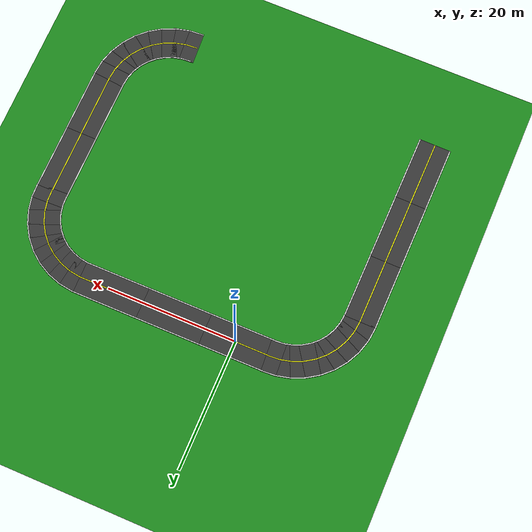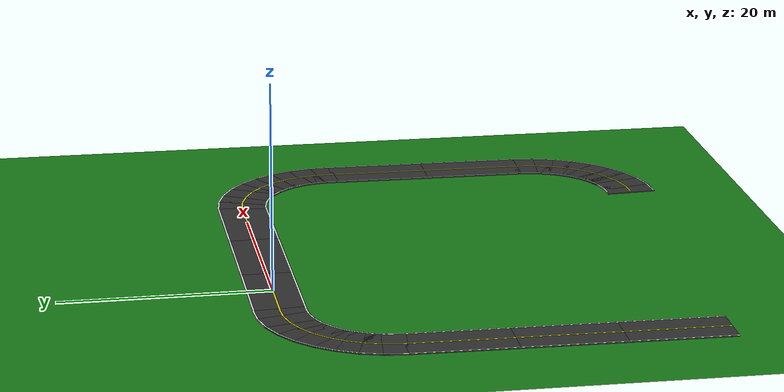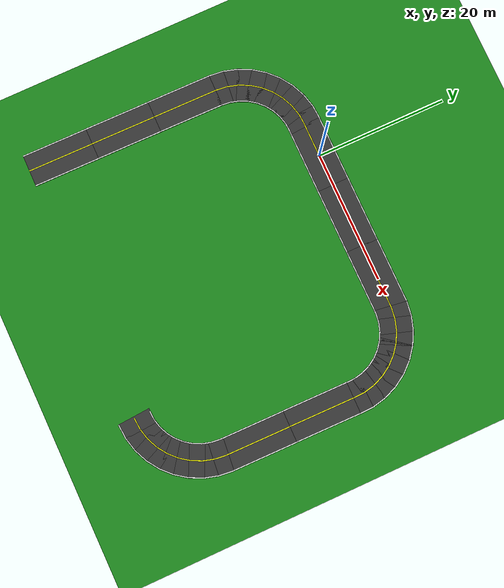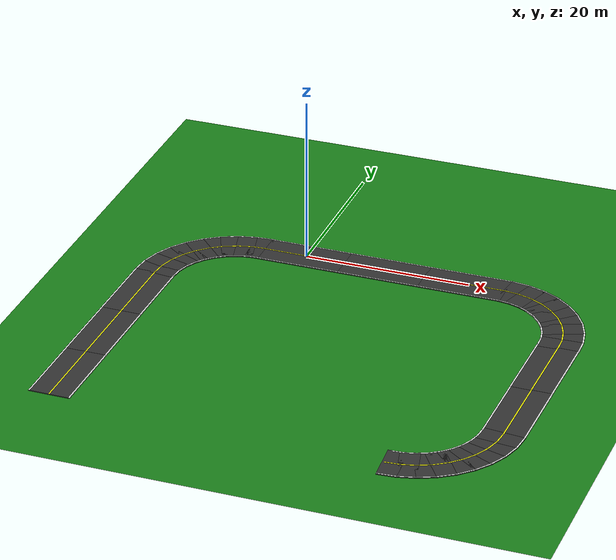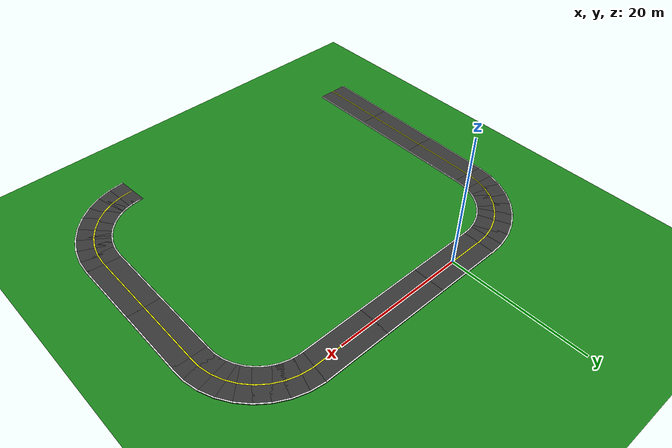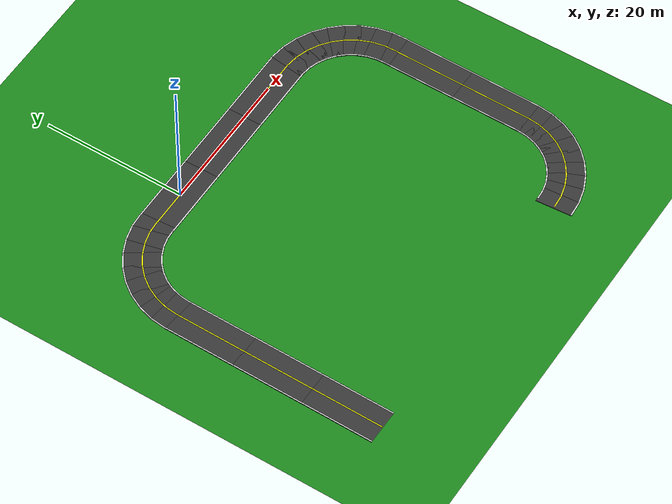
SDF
<sdf version="1.7">
 <world name="gas_station_3">
  <model name="ground_plane">
   <static>1</static>
   <link name="link">
    <collision name="collision">
     <geometry><plane><normal>0 0 1</normal><size>100 100</size></plane></geometry>
     <surface>
      <contact><collide_bitmask>65535</collide_bitmask></contact>
      <friction><ode><mu>100</mu><mu2>50</mu2></ode></friction>
     </surface>
    </collision>
    <visual name="visual">
     <geometry><plane><normal>0 0 1</normal><size>100 100</size></plane></geometry>
     <material>
      <ambient>0.1 0.5 0.1 1</ambient>
      <diffuse>0.1 0.5 0.1 1</diffuse>
      <specular>0.1 0.1 0.1 1</specular>
     </material>
    </visual>
   </link>
   <pose>-0 -20 0 0 -0 0</pose>
  </model>
  <model name="road_straight">
   <static>1</static>
   <link name="link">
    <collision name="collision"><geometry><box><size>10 5 0.1</size></box></geometry></collision>
    <visual name="visual_surface">
     <geometry><box><size>10 5 0.1</size></box></geometry>
     <material>
      <ambient>0.2 0.2 0.2 1</ambient>
      <diffuse>0.2 0.2 0.2 1</diffuse>
      <specular>0.1 0.1 0.1 1</specular>
     </material>
    </visual>
    <visual name="visual_center_line">
     <pose>0 0 0.051 0 -0 0</pose>
     <geometry><box><size>10 0.15 0.001</size></box></geometry>
     <material><ambient>1 1 0 1</ambient><diffuse>1 1 0 1</diffuse></material>
    </visual>
    <visual name="visual_left_line">
     <pose>0 2.4 0.051 0 -0 0</pose>
     <geometry><box><size>10 0.15 0.001</size></box></geometry>
     <material><ambient>1 1 1 1</ambient><diffuse>1 1 1 1</diffuse></material>
    </visual>
    <visual name="visual_right_line">
     <pose>0 -2.4 0.051 0 -0 0</pose>
     <geometry><box><size>10 0.15 0.001</size></box></geometry>
     <material><ambient>1 1 1 1</ambient><diffuse>1 1 1 1</diffuse></material>
    </visual>
   </link>
   <pose>-0.248347 0.000542 0 0 -0 0</pose>
  </model>
  <model name="road_straight_clone">
   <static>1</static>
   <link name="link">
    <collision name="collision"><geometry><box><size>10 5 0.1</size></box></geometry></collision>
    <visual name="visual_surface">
     <geometry><box><size>10 5 0.1</size></box></geometry>
     <material>
      <ambient>0.2 0.2 0.2 1</ambient>
      <diffuse>0.2 0.2 0.2 1</diffuse>
      <specular>0.1 0.1 0.1 1</specular>
     </material>
    </visual>
    <visual name="visual_center_line">
     <pose>0 0 0.051 0 -0 0</pose>
     <geometry><box><size>10 0.15 0.001</size></box></geometry>
     <material><ambient>1 1 0 1</ambient><diffuse>1 1 0 1</diffuse></material>
    </visual>
    <visual name="visual_left_line">
     <pose>0 2.4 0.051 0 -0 0</pose>
     <geometry><box><size>10 0.15 0.001</size></box></geometry>
     <material><ambient>1 1 1 1</ambient><diffuse>1 1 1 1</diffuse></material>
    </visual>
    <visual name="visual_right_line">
     <pose>0 -2.4 0.051 0 -0 0</pose>
     <geometry><box><size>10 0.15 0.001</size></box></geometry>
     <material><ambient>1 1 1 1</ambient><diffuse>1 1 1 1</diffuse></material>
    </visual>
   </link>
   <pose>9.70219 0.000539 0 0 -0 0</pose>
  </model>
  <model name="road_straight_clone_clone">
   <static>1</static>
   <link name="link">
    <collision name="collision"><geometry><box><size>10 5 0.1</size></box></geometry></collision>
    <visual name="visual_surface">
     <geometry><box><size>10 5 0.1</size></box></geometry>
     <material>
      <ambient>0.2 0.2 0.2 1</ambient>
      <diffuse>0.2 0.2 0.2 1</diffuse>
      <specular>0.1 0.1 0.1 1</specular>
     </material>
    </visual>
    <visual name="visual_center_line">
     <pose>0 0 0.051 0 -0 0</pose>
     <geometry><box><size>10 0.15 0.001</size></box></geometry>
     <material><ambient>1 1 0 1</ambient><diffuse>1 1 0 1</diffuse></material>
    </visual>
    <visual name="visual_left_line">
     <pose>0 2.4 0.051 0 -0 0</pose>
     <geometry><box><size>10 0.15 0.001</size></box></geometry>
     <material><ambient>1 1 1 1</ambient><diffuse>1 1 1 1</diffuse></material>
    </visual>
    <visual name="visual_right_line">
     <pose>0 -2.4 0.051 0 -0 0</pose>
     <geometry><box><size>10 0.15 0.001</size></box></geometry>
     <material><ambient>1 1 1 1</ambient><diffuse>1 1 1 1</diffuse></material>
    </visual>
   </link>
   <pose>19.59 0.00396 0 0 -0 0</pose>
  </model>
  <model name="road_curved">
   <static>1</static>
   <link name="link">
    <visual name="visual_segment_0">
     <pose>0.8716 0.0381 0 0 -0 0.0873</pose>
     <geometry><box><size>2.2789 5 0.1</size></box></geometry>
     <material>
      <ambient>0.2 0.2 0.2 1</ambient>
      <diffuse>0.2 0.2 0.2 1</diffuse>
      <specular>0.1 0.1 0.1 1</specular>
     </material>
    </visual>
    <collision name="collision_segment_0">
     <pose>0.8716 0.0381 0 0 -0 0.0873</pose>
     <geometry><box><size>2.2789 5 0.1</size></box></geometry>
    </collision>
    <visual name="visual_center_line_0">
     <pose>0.8716 0.0381 0.051 0 -0 0.0873</pose>
     <geometry><box><size>1.7931 0.15 0.001</size></box></geometry>
     <material><ambient>1 1 0 1</ambient><diffuse>1 1 0 1</diffuse></material>
    </visual>
    <visual name="visual_inner_line_0">
     <pose>0.6624 2.4289 0.051 0 -0 0.0873</pose>
     <geometry><box><size>1.3748 0.15 0.001</size></box></geometry>
     <material><ambient>1 1 1 1</ambient><diffuse>1 1 1 1</diffuse></material>
    </visual>
    <visual name="visual_outer_line_0">
     <pose>1.0807 -2.3528 0.051 0 -0 0.0873</pose>
     <geometry><box><size>2.2115 0.15 0.001</size></box></geometry>
     <material><ambient>1 1 1 1</ambient><diffuse>1 1 1 1</diffuse></material>
    </visual>
    <visual name="visual_segment_1">
     <pose>2.5882 0.3407 0 0 -0 0.2618</pose>
     <geometry><box><size>2.2789 5 0.1</size></box></geometry>
     <material>
      <ambient>0.2 0.2 0.2 1</ambient>
      <diffuse>0.2 0.2 0.2 1</diffuse>
      <specular>0.1 0.1 0.1 1</specular>
     </material>
    </visual>
    <collision name="collision_segment_1">
     <pose>2.5882 0.3407 0 0 -0 0.2618</pose>
     <geometry><box><size>2.2789 5 0.1</size></box></geometry>
    </collision>
    <visual name="visual_center_line_1">
     <pose>2.5882 0.3407 0.051 0 -0 0.2618</pose>
     <geometry><box><size>1.7931 0.15 0.001</size></box></geometry>
     <material><ambient>1 1 0 1</ambient><diffuse>1 1 0 1</diffuse></material>
    </visual>
    <visual name="visual_inner_line_1">
     <pose>1.967 2.659 0.051 0 -0 0.2618</pose>
     <geometry><box><size>1.3748 0.15 0.001</size></box></geometry>
     <material><ambient>1 1 1 1</ambient><diffuse>1 1 1 1</diffuse></material>
    </visual>
    <visual name="visual_outer_line_1">
     <pose>3.2094 -1.9775 0.051 0 -0 0.2618</pose>
     <geometry><box><size>2.2115 0.15 0.001</size></box></geometry>
     <material><ambient>1 1 1 1</ambient><diffuse>1 1 1 1</diffuse></material>
    </visual>
    <visual name="visual_segment_2">
     <pose>4.2262 0.9369 0 0 -0 0.4363</pose>
     <geometry><box><size>2.2789 5 0.1</size></box></geometry>
     <material>
      <ambient>0.2 0.2 0.2 1</ambient>
      <diffuse>0.2 0.2 0.2 1</diffuse>
      <specular>0.1 0.1 0.1 1</specular>
     </material>
    </visual>
    <collision name="collision_segment_2">
     <pose>4.2262 0.9369 0 0 -0 0.4363</pose>
     <geometry><box><size>2.2789 5 0.1</size></box></geometry>
    </collision>
    <visual name="visual_center_line_2">
     <pose>4.2262 0.9369 0.051 0 -0 0.4363</pose>
     <geometry><box><size>1.7931 0.15 0.001</size></box></geometry>
     <material><ambient>1 1 0 1</ambient><diffuse>1 1 0 1</diffuse></material>
    </visual>
    <visual name="visual_inner_line_2">
     <pose>3.2119 3.1121 0.051 0 -0 0.4363</pose>
     <geometry><box><size>1.3748 0.15 0.001</size></box></geometry>
     <material><ambient>1 1 1 1</ambient><diffuse>1 1 1 1</diffuse></material>
    </visual>
    <visual name="visual_outer_line_2">
     <pose>5.2405 -1.2382 0.051 0 -0 0.4363</pose>
     <geometry><box><size>2.2115 0.15 0.001</size></box></geometry>
     <material><ambient>1 1 1 1</ambient><diffuse>1 1 1 1</diffuse></material>
    </visual>
    <visual name="visual_segment_3">
     <pose>5.7358 1.8085 0 0 -0 0.6109</pose>
     <geometry><box><size>2.2789 5 0.1</size></box></geometry>
     <material>
      <ambient>0.2 0.2 0.2 1</ambient>
      <diffuse>0.2 0.2 0.2 1</diffuse>
      <specular>0.1 0.1 0.1 1</specular>
     </material>
    </visual>
    <collision name="collision_segment_3">
     <pose>5.7358 1.8085 0 0 -0 0.6109</pose>
     <geometry><box><size>2.2789 5 0.1</size></box></geometry>
    </collision>
    <visual name="visual_center_line_3">
     <pose>5.7358 1.8085 0.051 0 -0 0.6109</pose>
     <geometry><box><size>1.7931 0.15 0.001</size></box></geometry>
     <material><ambient>1 1 0 1</ambient><diffuse>1 1 0 1</diffuse></material>
    </visual>
    <visual name="visual_inner_line_3">
     <pose>4.3592 3.7744 0.051 0 -0 0.6109</pose>
     <geometry><box><size>1.3748 0.15 0.001</size></box></geometry>
     <material><ambient>1 1 1 1</ambient><diffuse>1 1 1 1</diffuse></material>
    </visual>
    <visual name="visual_outer_line_3">
     <pose>7.1123 -0.1575 0.051 0 -0 0.6109</pose>
     <geometry><box><size>2.2115 0.15 0.001</size></box></geometry>
     <material><ambient>1 1 1 1</ambient><diffuse>1 1 1 1</diffuse></material>
    </visual>
    <visual name="visual_segment_4">
     <pose>7.0711 2.9289 0 0 -0 0.7854</pose>
     <geometry><box><size>2.2789 5 0.1</size></box></geometry>
     <material>
      <ambient>0.2 0.2 0.2 1</ambient>
      <diffuse>0.2 0.2 0.2 1</diffuse>
      <specular>0.1 0.1 0.1 1</specular>
     </material>
    </visual>
    <collision name="collision_segment_4">
     <pose>7.0711 2.9289 0 0 -0 0.7854</pose>
     <geometry><box><size>2.2789 5 0.1</size></box></geometry>
    </collision>
    <visual name="visual_center_line_4">
     <pose>7.0711 2.9289 0.051 0 -0 0.7854</pose>
     <geometry><box><size>1.7931 0.15 0.001</size></box></geometry>
     <material><ambient>1 1 0 1</ambient><diffuse>1 1 0 1</diffuse></material>
    </visual>
    <visual name="visual_inner_line_4">
     <pose>5.374 4.626 0.051 0 -0 0.7854</pose>
     <geometry><box><size>1.3748 0.15 0.001</size></box></geometry>
     <material><ambient>1 1 1 1</ambient><diffuse>1 1 1 1</diffuse></material>
    </visual>
    <visual name="visual_outer_line_4">
     <pose>8.7681 1.2319 0.051 0 -0 0.7854</pose>
     <geometry><box><size>2.2115 0.15 0.001</size></box></geometry>
     <material><ambient>1 1 1 1</ambient><diffuse>1 1 1 1</diffuse></material>
    </visual>
    <visual name="visual_segment_5">
     <pose>8.1915 4.2642 0 0 -0 0.9599</pose>
     <geometry><box><size>2.2789 5 0.1</size></box></geometry>
     <material>
      <ambient>0.2 0.2 0.2 1</ambient>
      <diffuse>0.2 0.2 0.2 1</diffuse>
      <specular>0.1 0.1 0.1 1</specular>
     </material>
    </visual>
    <collision name="collision_segment_5">
     <pose>8.1915 4.2642 0 0 -0 0.9599</pose>
     <geometry><box><size>2.2789 5 0.1</size></box></geometry>
    </collision>
    <visual name="visual_center_line_5">
     <pose>8.1915 4.2642 0.051 0 -0 0.9599</pose>
     <geometry><box><size>1.7931 0.15 0.001</size></box></geometry>
     <material><ambient>1 1 0 1</ambient><diffuse>1 1 0 1</diffuse></material>
    </visual>
    <visual name="visual_inner_line_5">
     <pose>6.2256 5.6408 0.051 0 -0 0.9599</pose>
     <geometry><box><size>1.3748 0.15 0.001</size></box></geometry>
     <material><ambient>1 1 1 1</ambient><diffuse>1 1 1 1</diffuse></material>
    </visual>
    <visual name="visual_outer_line_5">
     <pose>10.1575 2.8877 0.051 0 -0 0.9599</pose>
     <geometry><box><size>2.2115 0.15 0.001</size></box></geometry>
     <material><ambient>1 1 1 1</ambient><diffuse>1 1 1 1</diffuse></material>
    </visual>
    <visual name="visual_segment_6">
     <pose>9.0631 5.7738 0 0 -0 1.1345</pose>
     <geometry><box><size>2.2789 5 0.1</size></box></geometry>
     <material>
      <ambient>0.2 0.2 0.2 1</ambient>
      <diffuse>0.2 0.2 0.2 1</diffuse>
      <specular>0.1 0.1 0.1 1</specular>
     </material>
    </visual>
    <collision name="collision_segment_6">
     <pose>9.0631 5.7738 0 0 -0 1.1345</pose>
     <geometry><box><size>2.2789 5 0.1</size></box></geometry>
    </collision>
    <visual name="visual_center_line_6">
     <pose>9.0631 5.7738 0.051 0 -0 1.1345</pose>
     <geometry><box><size>1.7931 0.15 0.001</size></box></geometry>
     <material><ambient>1 1 0 1</ambient><diffuse>1 1 0 1</diffuse></material>
    </visual>
    <visual name="visual_inner_line_6">
     <pose>6.8879 6.7881 0.051 0 -0 1.1345</pose>
     <geometry><box><size>1.3748 0.15 0.001</size></box></geometry>
     <material><ambient>1 1 1 1</ambient><diffuse>1 1 1 1</diffuse></material>
    </visual>
    <visual name="visual_outer_line_6">
     <pose>11.2382 4.7595 0.051 0 -0 1.1345</pose>
     <geometry><box><size>2.2115 0.15 0.001</size></box></geometry>
     <material><ambient>1 1 1 1</ambient><diffuse>1 1 1 1</diffuse></material>
    </visual>
    <visual name="visual_segment_7">
     <pose>9.6593 7.4118 0 0 -0 1.309</pose>
     <geometry><box><size>2.2789 5 0.1</size></box></geometry>
     <material>
      <ambient>0.2 0.2 0.2 1</ambient>
      <diffuse>0.2 0.2 0.2 1</diffuse>
      <specular>0.1 0.1 0.1 1</specular>
     </material>
    </visual>
    <collision name="collision_segment_7">
     <pose>9.6593 7.4118 0 0 -0 1.309</pose>
     <geometry><box><size>2.2789 5 0.1</size></box></geometry>
    </collision>
    <visual name="visual_center_line_7">
     <pose>9.6593 7.4118 0.051 0 -0 1.309</pose>
     <geometry><box><size>1.7931 0.15 0.001</size></box></geometry>
     <material><ambient>1 1 0 1</ambient><diffuse>1 1 0 1</diffuse></material>
    </visual>
    <visual name="visual_inner_line_7">
     <pose>7.341 8.033 0.051 0 -0 1.309</pose>
     <geometry><box><size>1.3748 0.15 0.001</size></box></geometry>
     <material><ambient>1 1 1 1</ambient><diffuse>1 1 1 1</diffuse></material>
    </visual>
    <visual name="visual_outer_line_7">
     <pose>11.9775 6.7906 0.051 0 -0 1.309</pose>
     <geometry><box><size>2.2115 0.15 0.001</size></box></geometry>
     <material><ambient>1 1 1 1</ambient><diffuse>1 1 1 1</diffuse></material>
    </visual>
    <visual name="visual_segment_8">
     <pose>9.9619 9.1284 0 0 -0 1.4835</pose>
     <geometry><box><size>2.2789 5 0.1</size></box></geometry>
     <material>
      <ambient>0.2 0.2 0.2 1</ambient>
      <diffuse>0.2 0.2 0.2 1</diffuse>
      <specular>0.1 0.1 0.1 1</specular>
     </material>
    </visual>
    <collision name="collision_segment_8">
     <pose>9.9619 9.1284 0 0 -0 1.4835</pose>
     <geometry><box><size>2.2789 5 0.1</size></box></geometry>
    </collision>
    <visual name="visual_center_line_8">
     <pose>9.9619 9.1284 0.051 0 -0 1.4835</pose>
     <geometry><box><size>1.7931 0.15 0.001</size></box></geometry>
     <material><ambient>1 1 0 1</ambient><diffuse>1 1 0 1</diffuse></material>
    </visual>
    <visual name="visual_inner_line_8">
     <pose>7.5711 9.3376 0.051 0 -0 1.4835</pose>
     <geometry><box><size>1.3748 0.15 0.001</size></box></geometry>
     <material><ambient>1 1 1 1</ambient><diffuse>1 1 1 1</diffuse></material>
    </visual>
    <visual name="visual_outer_line_8">
     <pose>12.3528 8.9193 0.051 0 -0 1.4835</pose>
     <geometry><box><size>2.2115 0.15 0.001</size></box></geometry>
     <material><ambient>1 1 1 1</ambient><diffuse>1 1 1 1</diffuse></material>
    </visual>
   </link>
   <pose>34.0263 -10.5358 0 0 -0 1.51926</pose>
  </model>
  <model name="road_straight_clone_clone_clone">
   <static>1</static>
   <link name="link">
    <collision name="collision"><geometry><box><size>10 5 0.1</size></box></geometry></collision>
    <visual name="visual_surface">
     <geometry><box><size>10 5 0.1</size></box></geometry>
     <material>
      <ambient>0.2 0.2 0.2 1</ambient>
      <diffuse>0.2 0.2 0.2 1</diffuse>
      <specular>0.1 0.1 0.1 1</specular>
     </material>
    </visual>
    <visual name="visual_center_line">
     <pose>0 0 0.051 0 -0 0</pose>
     <geometry><box><size>10 0.15 0.001</size></box></geometry>
     <material><ambient>1 1 0 1</ambient><diffuse>1 1 0 1</diffuse></material>
    </visual>
    <visual name="visual_left_line">
     <pose>0 2.4 0.051 0 -0 0</pose>
     <geometry><box><size>10 0.15 0.001</size></box></geometry>
     <material><ambient>1 1 1 1</ambient><diffuse>1 1 1 1</diffuse></material>
    </visual>
    <visual name="visual_right_line">
     <pose>0 -2.4 0.051 0 -0 0</pose>
     <geometry><box><size>10 0.15 0.001</size></box></geometry>
     <material><ambient>1 1 1 1</ambient><diffuse>1 1 1 1</diffuse></material>
    </visual>
   </link>
   <pose>33.9982 -15.4816 0 0 -0 1.56099</pose>
  </model>
  <model name="road_straight_clone_clone_clone_clone">
   <static>1</static>
   <link name="link">
    <collision name="collision"><geometry><box><size>10 5 0.1</size></box></geometry></collision>
    <visual name="visual_surface">
     <geometry><box><size>10 5 0.1</size></box></geometry>
     <material>
      <ambient>0.2 0.2 0.2 1</ambient>
      <diffuse>0.2 0.2 0.2 1</diffuse>
      <specular>0.1 0.1 0.1 1</specular>
     </material>
    </visual>
    <visual name="visual_center_line">
     <pose>0 0 0.051 0 -0 0</pose>
     <geometry><box><size>10 0.15 0.001</size></box></geometry>
     <material><ambient>1 1 0 1</ambient><diffuse>1 1 0 1</diffuse></material>
    </visual>
    <visual name="visual_left_line">
     <pose>0 2.4 0.051 0 -0 0</pose>
     <geometry><box><size>10 0.15 0.001</size></box></geometry>
     <material><ambient>1 1 1 1</ambient><diffuse>1 1 1 1</diffuse></material>
    </visual>
    <visual name="visual_right_line">
     <pose>0 -2.4 0.051 0 -0 0</pose>
     <geometry><box><size>10 0.15 0.001</size></box></geometry>
     <material><ambient>1 1 1 1</ambient><diffuse>1 1 1 1</diffuse></material>
    </visual>
   </link>
   <pose>33.9162 -25.3829 0 0 -0 1.56099</pose>
  </model>
  <model name="road_curved_clone">
   <static>1</static>
   <link name="link">
    <visual name="visual_segment_0">
     <pose>0.8716 0.0381 0 0 -0 0.0873</pose>
     <geometry><box><size>2.2789 5 0.1</size></box></geometry>
     <material>
      <ambient>0.2 0.2 0.2 1</ambient>
      <diffuse>0.2 0.2 0.2 1</diffuse>
      <specular>0.1 0.1 0.1 1</specular>
     </material>
    </visual>
    <collision name="collision_segment_0">
     <pose>0.8716 0.0381 0 0 -0 0.0873</pose>
     <geometry><box><size>2.2789 5 0.1</size></box></geometry>
    </collision>
    <visual name="visual_center_line_0">
     <pose>0.8716 0.0381 0.051 0 -0 0.0873</pose>
     <geometry><box><size>1.7931 0.15 0.001</size></box></geometry>
     <material><ambient>1 1 0 1</ambient><diffuse>1 1 0 1</diffuse></material>
    </visual>
    <visual name="visual_inner_line_0">
     <pose>0.6624 2.4289 0.051 0 -0 0.0873</pose>
     <geometry><box><size>1.3748 0.15 0.001</size></box></geometry>
     <material><ambient>1 1 1 1</ambient><diffuse>1 1 1 1</diffuse></material>
    </visual>
    <visual name="visual_outer_line_0">
     <pose>1.0807 -2.3528 0.051 0 -0 0.0873</pose>
     <geometry><box><size>2.2115 0.15 0.001</size></box></geometry>
     <material><ambient>1 1 1 1</ambient><diffuse>1 1 1 1</diffuse></material>
    </visual>
    <visual name="visual_segment_1">
     <pose>2.5882 0.3407 0 0 -0 0.2618</pose>
     <geometry><box><size>2.2789 5 0.1</size></box></geometry>
     <material>
      <ambient>0.2 0.2 0.2 1</ambient>
      <diffuse>0.2 0.2 0.2 1</diffuse>
      <specular>0.1 0.1 0.1 1</specular>
     </material>
    </visual>
    <collision name="collision_segment_1">
     <pose>2.5882 0.3407 0 0 -0 0.2618</pose>
     <geometry><box><size>2.2789 5 0.1</size></box></geometry>
    </collision>
    <visual name="visual_center_line_1">
     <pose>2.5882 0.3407 0.051 0 -0 0.2618</pose>
     <geometry><box><size>1.7931 0.15 0.001</size></box></geometry>
     <material><ambient>1 1 0 1</ambient><diffuse>1 1 0 1</diffuse></material>
    </visual>
    <visual name="visual_inner_line_1">
     <pose>1.967 2.659 0.051 0 -0 0.2618</pose>
     <geometry><box><size>1.3748 0.15 0.001</size></box></geometry>
     <material><ambient>1 1 1 1</ambient><diffuse>1 1 1 1</diffuse></material>
    </visual>
    <visual name="visual_outer_line_1">
     <pose>3.2094 -1.9775 0.051 0 -0 0.2618</pose>
     <geometry><box><size>2.2115 0.15 0.001</size></box></geometry>
     <material><ambient>1 1 1 1</ambient><diffuse>1 1 1 1</diffuse></material>
    </visual>
    <visual name="visual_segment_2">
     <pose>4.2262 0.9369 0 0 -0 0.4363</pose>
     <geometry><box><size>2.2789 5 0.1</size></box></geometry>
     <material>
      <ambient>0.2 0.2 0.2 1</ambient>
      <diffuse>0.2 0.2 0.2 1</diffuse>
      <specular>0.1 0.1 0.1 1</specular>
     </material>
    </visual>
    <collision name="collision_segment_2">
     <pose>4.2262 0.9369 0 0 -0 0.4363</pose>
     <geometry><box><size>2.2789 5 0.1</size></box></geometry>
    </collision>
    <visual name="visual_center_line_2">
     <pose>4.2262 0.9369 0.051 0 -0 0.4363</pose>
     <geometry><box><size>1.7931 0.15 0.001</size></box></geometry>
     <material><ambient>1 1 0 1</ambient><diffuse>1 1 0 1</diffuse></material>
    </visual>
    <visual name="visual_inner_line_2">
     <pose>3.2119 3.1121 0.051 0 -0 0.4363</pose>
     <geometry><box><size>1.3748 0.15 0.001</size></box></geometry>
     <material><ambient>1 1 1 1</ambient><diffuse>1 1 1 1</diffuse></material>
    </visual>
    <visual name="visual_outer_line_2">
     <pose>5.2405 -1.2382 0.051 0 -0 0.4363</pose>
     <geometry><box><size>2.2115 0.15 0.001</size></box></geometry>
     <material><ambient>1 1 1 1</ambient><diffuse>1 1 1 1</diffuse></material>
    </visual>
    <visual name="visual_segment_3">
     <pose>5.7358 1.8085 0 0 -0 0.6109</pose>
     <geometry><box><size>2.2789 5 0.1</size></box></geometry>
     <material>
      <ambient>0.2 0.2 0.2 1</ambient>
      <diffuse>0.2 0.2 0.2 1</diffuse>
      <specular>0.1 0.1 0.1 1</specular>
     </material>
    </visual>
    <collision name="collision_segment_3">
     <pose>5.7358 1.8085 0 0 -0 0.6109</pose>
     <geometry><box><size>2.2789 5 0.1</size></box></geometry>
    </collision>
    <visual name="visual_center_line_3">
     <pose>5.7358 1.8085 0.051 0 -0 0.6109</pose>
     <geometry><box><size>1.7931 0.15 0.001</size></box></geometry>
     <material><ambient>1 1 0 1</ambient><diffuse>1 1 0 1</diffuse></material>
    </visual>
    <visual name="visual_inner_line_3">
     <pose>4.3592 3.7744 0.051 0 -0 0.6109</pose>
     <geometry><box><size>1.3748 0.15 0.001</size></box></geometry>
     <material><ambient>1 1 1 1</ambient><diffuse>1 1 1 1</diffuse></material>
    </visual>
    <visual name="visual_outer_line_3">
     <pose>7.1123 -0.1575 0.051 0 -0 0.6109</pose>
     <geometry><box><size>2.2115 0.15 0.001</size></box></geometry>
     <material><ambient>1 1 1 1</ambient><diffuse>1 1 1 1</diffuse></material>
    </visual>
    <visual name="visual_segment_4">
     <pose>7.0711 2.9289 0 0 -0 0.7854</pose>
     <geometry><box><size>2.2789 5 0.1</size></box></geometry>
     <material>
      <ambient>0.2 0.2 0.2 1</ambient>
      <diffuse>0.2 0.2 0.2 1</diffuse>
      <specular>0.1 0.1 0.1 1</specular>
     </material>
    </visual>
    <collision name="collision_segment_4">
     <pose>7.0711 2.9289 0 0 -0 0.7854</pose>
     <geometry><box><size>2.2789 5 0.1</size></box></geometry>
    </collision>
    <visual name="visual_center_line_4">
     <pose>7.0711 2.9289 0.051 0 -0 0.7854</pose>
     <geometry><box><size>1.7931 0.15 0.001</size></box></geometry>
     <material><ambient>1 1 0 1</ambient><diffuse>1 1 0 1</diffuse></material>
    </visual>
    <visual name="visual_inner_line_4">
     <pose>5.374 4.626 0.051 0 -0 0.7854</pose>
     <geometry><box><size>1.3748 0.15 0.001</size></box></geometry>
     <material><ambient>1 1 1 1</ambient><diffuse>1 1 1 1</diffuse></material>
    </visual>
    <visual name="visual_outer_line_4">
     <pose>8.7681 1.2319 0.051 0 -0 0.7854</pose>
     <geometry><box><size>2.2115 0.15 0.001</size></box></geometry>
     <material><ambient>1 1 1 1</ambient><diffuse>1 1 1 1</diffuse></material>
    </visual>
    <visual name="visual_segment_5">
     <pose>8.1915 4.2642 0 0 -0 0.9599</pose>
     <geometry><box><size>2.2789 5 0.1</size></box></geometry>
     <material>
      <ambient>0.2 0.2 0.2 1</ambient>
      <diffuse>0.2 0.2 0.2 1</diffuse>
      <specular>0.1 0.1 0.1 1</specular>
     </material>
    </visual>
    <collision name="collision_segment_5">
     <pose>8.1915 4.2642 0 0 -0 0.9599</pose>
     <geometry><box><size>2.2789 5 0.1</size></box></geometry>
    </collision>
    <visual name="visual_center_line_5">
     <pose>8.1915 4.2642 0.051 0 -0 0.9599</pose>
     <geometry><box><size>1.7931 0.15 0.001</size></box></geometry>
     <material><ambient>1 1 0 1</ambient><diffuse>1 1 0 1</diffuse></material>
    </visual>
    <visual name="visual_inner_line_5">
     <pose>6.2256 5.6408 0.051 0 -0 0.9599</pose>
     <geometry><box><size>1.3748 0.15 0.001</size></box></geometry>
     <material><ambient>1 1 1 1</ambient><diffuse>1 1 1 1</diffuse></material>
    </visual>
    <visual name="visual_outer_line_5">
     <pose>10.1575 2.8877 0.051 0 -0 0.9599</pose>
     <geometry><box><size>2.2115 0.15 0.001</size></box></geometry>
     <material><ambient>1 1 1 1</ambient><diffuse>1 1 1 1</diffuse></material>
    </visual>
    <visual name="visual_segment_6">
     <pose>9.0631 5.7738 0 0 -0 1.1345</pose>
     <geometry><box><size>2.2789 5 0.1</size></box></geometry>
     <material>
      <ambient>0.2 0.2 0.2 1</ambient>
      <diffuse>0.2 0.2 0.2 1</diffuse>
      <specular>0.1 0.1 0.1 1</specular>
     </material>
    </visual>
    <collision name="collision_segment_6">
     <pose>9.0631 5.7738 0 0 -0 1.1345</pose>
     <geometry><box><size>2.2789 5 0.1</size></box></geometry>
    </collision>
    <visual name="visual_center_line_6">
     <pose>9.0631 5.7738 0.051 0 -0 1.1345</pose>
     <geometry><box><size>1.7931 0.15 0.001</size></box></geometry>
     <material><ambient>1 1 0 1</ambient><diffuse>1 1 0 1</diffuse></material>
    </visual>
    <visual name="visual_inner_line_6">
     <pose>6.8879 6.7881 0.051 0 -0 1.1345</pose>
     <geometry><box><size>1.3748 0.15 0.001</size></box></geometry>
     <material><ambient>1 1 1 1</ambient><diffuse>1 1 1 1</diffuse></material>
    </visual>
    <visual name="visual_outer_line_6">
     <pose>11.2382 4.7595 0.051 0 -0 1.1345</pose>
     <geometry><box><size>2.2115 0.15 0.001</size></box></geometry>
     <material><ambient>1 1 1 1</ambient><diffuse>1 1 1 1</diffuse></material>
    </visual>
    <visual name="visual_segment_7">
     <pose>9.6593 7.4118 0 0 -0 1.309</pose>
     <geometry><box><size>2.2789 5 0.1</size></box></geometry>
     <material>
      <ambient>0.2 0.2 0.2 1</ambient>
      <diffuse>0.2 0.2 0.2 1</diffuse>
      <specular>0.1 0.1 0.1 1</specular>
     </material>
    </visual>
    <collision name="collision_segment_7">
     <pose>9.6593 7.4118 0 0 -0 1.309</pose>
     <geometry><box><size>2.2789 5 0.1</size></box></geometry>
    </collision>
    <visual name="visual_center_line_7">
     <pose>9.6593 7.4118 0.051 0 -0 1.309</pose>
     <geometry><box><size>1.7931 0.15 0.001</size></box></geometry>
     <material><ambient>1 1 0 1</ambient><diffuse>1 1 0 1</diffuse></material>
    </visual>
    <visual name="visual_inner_line_7">
     <pose>7.341 8.033 0.051 0 -0 1.309</pose>
     <geometry><box><size>1.3748 0.15 0.001</size></box></geometry>
     <material><ambient>1 1 1 1</ambient><diffuse>1 1 1 1</diffuse></material>
    </visual>
    <visual name="visual_outer_line_7">
     <pose>11.9775 6.7906 0.051 0 -0 1.309</pose>
     <geometry><box><size>2.2115 0.15 0.001</size></box></geometry>
     <material><ambient>1 1 1 1</ambient><diffuse>1 1 1 1</diffuse></material>
    </visual>
    <visual name="visual_segment_8">
     <pose>9.9619 9.1284 0 0 -0 1.4835</pose>
     <geometry><box><size>2.2789 5 0.1</size></box></geometry>
     <material>
      <ambient>0.2 0.2 0.2 1</ambient>
      <diffuse>0.2 0.2 0.2 1</diffuse>
      <specular>0.1 0.1 0.1 1</specular>
     </material>
    </visual>
    <collision name="collision_segment_8">
     <pose>9.9619 9.1284 0 0 -0 1.4835</pose>
     <geometry><box><size>2.2789 5 0.1</size></box></geometry>
    </collision>
    <visual name="visual_center_line_8">
     <pose>9.9619 9.1284 0.051 0 -0 1.4835</pose>
     <geometry><box><size>1.7931 0.15 0.001</size></box></geometry>
     <material><ambient>1 1 0 1</ambient><diffuse>1 1 0 1</diffuse></material>
    </visual>
    <visual name="visual_inner_line_8">
     <pose>7.5711 9.3376 0.051 0 -0 1.4835</pose>
     <geometry><box><size>1.3748 0.15 0.001</size></box></geometry>
     <material><ambient>1 1 1 1</ambient><diffuse>1 1 1 1</diffuse></material>
    </visual>
    <visual name="visual_outer_line_8">
     <pose>12.3528 8.9193 0.051 0 -0 1.4835</pose>
     <geometry><box><size>2.2115 0.15 0.001</size></box></geometry>
     <material><ambient>1 1 1 1</ambient><diffuse>1 1 1 1</diffuse></material>
    </visual>
   </link>
   <pose>23.6605 -40.1311 0 0 0 -0.017705</pose>
  </model>
  <model name="road_curved_clone_1">
   <static>1</static>
   <link name="link">
    <visual name="visual_segment_0">
     <pose>0.8716 0.0381 0 0 -0 0.0873</pose>
     <geometry><box><size>2.2789 5 0.1</size></box></geometry>
     <material>
      <ambient>0.2 0.2 0.2 1</ambient>
      <diffuse>0.2 0.2 0.2 1</diffuse>
      <specular>0.1 0.1 0.1 1</specular>
     </material>
    </visual>
    <collision name="collision_segment_0">
     <pose>0.8716 0.0381 0 0 -0 0.0873</pose>
     <geometry><box><size>2.2789 5 0.1</size></box></geometry>
    </collision>
    <visual name="visual_center_line_0">
     <pose>0.8716 0.0381 0.051 0 -0 0.0873</pose>
     <geometry><box><size>1.7931 0.15 0.001</size></box></geometry>
     <material><ambient>1 1 0 1</ambient><diffuse>1 1 0 1</diffuse></material>
    </visual>
    <visual name="visual_inner_line_0">
     <pose>0.6624 2.4289 0.051 0 -0 0.0873</pose>
     <geometry><box><size>1.3748 0.15 0.001</size></box></geometry>
     <material><ambient>1 1 1 1</ambient><diffuse>1 1 1 1</diffuse></material>
    </visual>
    <visual name="visual_outer_line_0">
     <pose>1.0807 -2.3528 0.051 0 -0 0.0873</pose>
     <geometry><box><size>2.2115 0.15 0.001</size></box></geometry>
     <material><ambient>1 1 1 1</ambient><diffuse>1 1 1 1</diffuse></material>
    </visual>
    <visual name="visual_segment_1">
     <pose>2.5882 0.3407 0 0 -0 0.2618</pose>
     <geometry><box><size>2.2789 5 0.1</size></box></geometry>
     <material>
      <ambient>0.2 0.2 0.2 1</ambient>
      <diffuse>0.2 0.2 0.2 1</diffuse>
      <specular>0.1 0.1 0.1 1</specular>
     </material>
    </visual>
    <collision name="collision_segment_1">
     <pose>2.5882 0.3407 0 0 -0 0.2618</pose>
     <geometry><box><size>2.2789 5 0.1</size></box></geometry>
    </collision>
    <visual name="visual_center_line_1">
     <pose>2.5882 0.3407 0.051 0 -0 0.2618</pose>
     <geometry><box><size>1.7931 0.15 0.001</size></box></geometry>
     <material><ambient>1 1 0 1</ambient><diffuse>1 1 0 1</diffuse></material>
    </visual>
    <visual name="visual_inner_line_1">
     <pose>1.967 2.659 0.051 0 -0 0.2618</pose>
     <geometry><box><size>1.3748 0.15 0.001</size></box></geometry>
     <material><ambient>1 1 1 1</ambient><diffuse>1 1 1 1</diffuse></material>
    </visual>
    <visual name="visual_outer_line_1">
     <pose>3.2094 -1.9775 0.051 0 -0 0.2618</pose>
     <geometry><box><size>2.2115 0.15 0.001</size></box></geometry>
     <material><ambient>1 1 1 1</ambient><diffuse>1 1 1 1</diffuse></material>
    </visual>
    <visual name="visual_segment_2">
     <pose>4.2262 0.9369 0 0 -0 0.4363</pose>
     <geometry><box><size>2.2789 5 0.1</size></box></geometry>
     <material>
      <ambient>0.2 0.2 0.2 1</ambient>
      <diffuse>0.2 0.2 0.2 1</diffuse>
      <specular>0.1 0.1 0.1 1</specular>
     </material>
    </visual>
    <collision name="collision_segment_2">
     <pose>4.2262 0.9369 0 0 -0 0.4363</pose>
     <geometry><box><size>2.2789 5 0.1</size></box></geometry>
    </collision>
    <visual name="visual_center_line_2">
     <pose>4.2262 0.9369 0.051 0 -0 0.4363</pose>
     <geometry><box><size>1.7931 0.15 0.001</size></box></geometry>
     <material><ambient>1 1 0 1</ambient><diffuse>1 1 0 1</diffuse></material>
    </visual>
    <visual name="visual_inner_line_2">
     <pose>3.2119 3.1121 0.051 0 -0 0.4363</pose>
     <geometry><box><size>1.3748 0.15 0.001</size></box></geometry>
     <material><ambient>1 1 1 1</ambient><diffuse>1 1 1 1</diffuse></material>
    </visual>
    <visual name="visual_outer_line_2">
     <pose>5.2405 -1.2382 0.051 0 -0 0.4363</pose>
     <geometry><box><size>2.2115 0.15 0.001</size></box></geometry>
     <material><ambient>1 1 1 1</ambient><diffuse>1 1 1 1</diffuse></material>
    </visual>
    <visual name="visual_segment_3">
     <pose>5.7358 1.8085 0 0 -0 0.6109</pose>
     <geometry><box><size>2.2789 5 0.1</size></box></geometry>
     <material>
      <ambient>0.2 0.2 0.2 1</ambient>
      <diffuse>0.2 0.2 0.2 1</diffuse>
      <specular>0.1 0.1 0.1 1</specular>
     </material>
    </visual>
    <collision name="collision_segment_3">
     <pose>5.7358 1.8085 0 0 -0 0.6109</pose>
     <geometry><box><size>2.2789 5 0.1</size></box></geometry>
    </collision>
    <visual name="visual_center_line_3">
     <pose>5.7358 1.8085 0.051 0 -0 0.6109</pose>
     <geometry><box><size>1.7931 0.15 0.001</size></box></geometry>
     <material><ambient>1 1 0 1</ambient><diffuse>1 1 0 1</diffuse></material>
    </visual>
    <visual name="visual_inner_line_3">
     <pose>4.3592 3.7744 0.051 0 -0 0.6109</pose>
     <geometry><box><size>1.3748 0.15 0.001</size></box></geometry>
     <material><ambient>1 1 1 1</ambient><diffuse>1 1 1 1</diffuse></material>
    </visual>
    <visual name="visual_outer_line_3">
     <pose>7.1123 -0.1575 0.051 0 -0 0.6109</pose>
     <geometry><box><size>2.2115 0.15 0.001</size></box></geometry>
     <material><ambient>1 1 1 1</ambient><diffuse>1 1 1 1</diffuse></material>
    </visual>
    <visual name="visual_segment_4">
     <pose>7.0711 2.9289 0 0 -0 0.7854</pose>
     <geometry><box><size>2.2789 5 0.1</size></box></geometry>
     <material>
      <ambient>0.2 0.2 0.2 1</ambient>
      <diffuse>0.2 0.2 0.2 1</diffuse>
      <specular>0.1 0.1 0.1 1</specular>
     </material>
    </visual>
    <collision name="collision_segment_4">
     <pose>7.0711 2.9289 0 0 -0 0.7854</pose>
     <geometry><box><size>2.2789 5 0.1</size></box></geometry>
    </collision>
    <visual name="visual_center_line_4">
     <pose>7.0711 2.9289 0.051 0 -0 0.7854</pose>
     <geometry><box><size>1.7931 0.15 0.001</size></box></geometry>
     <material><ambient>1 1 0 1</ambient><diffuse>1 1 0 1</diffuse></material>
    </visual>
    <visual name="visual_inner_line_4">
     <pose>5.374 4.626 0.051 0 -0 0.7854</pose>
     <geometry><box><size>1.3748 0.15 0.001</size></box></geometry>
     <material><ambient>1 1 1 1</ambient><diffuse>1 1 1 1</diffuse></material>
    </visual>
    <visual name="visual_outer_line_4">
     <pose>8.7681 1.2319 0.051 0 -0 0.7854</pose>
     <geometry><box><size>2.2115 0.15 0.001</size></box></geometry>
     <material><ambient>1 1 1 1</ambient><diffuse>1 1 1 1</diffuse></material>
    </visual>
    <visual name="visual_segment_5">
     <pose>8.1915 4.2642 0 0 -0 0.9599</pose>
     <geometry><box><size>2.2789 5 0.1</size></box></geometry>
     <material>
      <ambient>0.2 0.2 0.2 1</ambient>
      <diffuse>0.2 0.2 0.2 1</diffuse>
      <specular>0.1 0.1 0.1 1</specular>
     </material>
    </visual>
    <collision name="collision_segment_5">
     <pose>8.1915 4.2642 0 0 -0 0.9599</pose>
     <geometry><box><size>2.2789 5 0.1</size></box></geometry>
    </collision>
    <visual name="visual_center_line_5">
     <pose>8.1915 4.2642 0.051 0 -0 0.9599</pose>
     <geometry><box><size>1.7931 0.15 0.001</size></box></geometry>
     <material><ambient>1 1 0 1</ambient><diffuse>1 1 0 1</diffuse></material>
    </visual>
    <visual name="visual_inner_line_5">
     <pose>6.2256 5.6408 0.051 0 -0 0.9599</pose>
     <geometry><box><size>1.3748 0.15 0.001</size></box></geometry>
     <material><ambient>1 1 1 1</ambient><diffuse>1 1 1 1</diffuse></material>
    </visual>
    <visual name="visual_outer_line_5">
     <pose>10.1575 2.8877 0.051 0 -0 0.9599</pose>
     <geometry><box><size>2.2115 0.15 0.001</size></box></geometry>
     <material><ambient>1 1 1 1</ambient><diffuse>1 1 1 1</diffuse></material>
    </visual>
    <visual name="visual_segment_6">
     <pose>9.0631 5.7738 0 0 -0 1.1345</pose>
     <geometry><box><size>2.2789 5 0.1</size></box></geometry>
     <material>
      <ambient>0.2 0.2 0.2 1</ambient>
      <diffuse>0.2 0.2 0.2 1</diffuse>
      <specular>0.1 0.1 0.1 1</specular>
     </material>
    </visual>
    <collision name="collision_segment_6">
     <pose>9.0631 5.7738 0 0 -0 1.1345</pose>
     <geometry><box><size>2.2789 5 0.1</size></box></geometry>
    </collision>
    <visual name="visual_center_line_6">
     <pose>9.0631 5.7738 0.051 0 -0 1.1345</pose>
     <geometry><box><size>1.7931 0.15 0.001</size></box></geometry>
     <material><ambient>1 1 0 1</ambient><diffuse>1 1 0 1</diffuse></material>
    </visual>
    <visual name="visual_inner_line_6">
     <pose>6.8879 6.7881 0.051 0 -0 1.1345</pose>
     <geometry><box><size>1.3748 0.15 0.001</size></box></geometry>
     <material><ambient>1 1 1 1</ambient><diffuse>1 1 1 1</diffuse></material>
    </visual>
    <visual name="visual_outer_line_6">
     <pose>11.2382 4.7595 0.051 0 -0 1.1345</pose>
     <geometry><box><size>2.2115 0.15 0.001</size></box></geometry>
     <material><ambient>1 1 1 1</ambient><diffuse>1 1 1 1</diffuse></material>
    </visual>
    <visual name="visual_segment_7">
     <pose>9.6593 7.4118 0 0 -0 1.309</pose>
     <geometry><box><size>2.2789 5 0.1</size></box></geometry>
     <material>
      <ambient>0.2 0.2 0.2 1</ambient>
      <diffuse>0.2 0.2 0.2 1</diffuse>
      <specular>0.1 0.1 0.1 1</specular>
     </material>
    </visual>
    <collision name="collision_segment_7">
     <pose>9.6593 7.4118 0 0 -0 1.309</pose>
     <geometry><box><size>2.2789 5 0.1</size></box></geometry>
    </collision>
    <visual name="visual_center_line_7">
     <pose>9.6593 7.4118 0.051 0 -0 1.309</pose>
     <geometry><box><size>1.7931 0.15 0.001</size></box></geometry>
     <material><ambient>1 1 0 1</ambient><diffuse>1 1 0 1</diffuse></material>
    </visual>
    <visual name="visual_inner_line_7">
     <pose>7.341 8.033 0.051 0 -0 1.309</pose>
     <geometry><box><size>1.3748 0.15 0.001</size></box></geometry>
     <material><ambient>1 1 1 1</ambient><diffuse>1 1 1 1</diffuse></material>
    </visual>
    <visual name="visual_outer_line_7">
     <pose>11.9775 6.7906 0.051 0 -0 1.309</pose>
     <geometry><box><size>2.2115 0.15 0.001</size></box></geometry>
     <material><ambient>1 1 1 1</ambient><diffuse>1 1 1 1</diffuse></material>
    </visual>
    <visual name="visual_segment_8">
     <pose>9.9619 9.1284 0 0 -0 1.4835</pose>
     <geometry><box><size>2.2789 5 0.1</size></box></geometry>
     <material>
      <ambient>0.2 0.2 0.2 1</ambient>
      <diffuse>0.2 0.2 0.2 1</diffuse>
      <specular>0.1 0.1 0.1 1</specular>
     </material>
    </visual>
    <collision name="collision_segment_8">
     <pose>9.9619 9.1284 0 0 -0 1.4835</pose>
     <geometry><box><size>2.2789 5 0.1</size></box></geometry>
    </collision>
    <visual name="visual_center_line_8">
     <pose>9.9619 9.1284 0.051 0 -0 1.4835</pose>
     <geometry><box><size>1.7931 0.15 0.001</size></box></geometry>
     <material><ambient>1 1 0 1</ambient><diffuse>1 1 0 1</diffuse></material>
    </visual>
    <visual name="visual_inner_line_8">
     <pose>7.5711 9.3376 0.051 0 -0 1.4835</pose>
     <geometry><box><size>1.3748 0.15 0.001</size></box></geometry>
     <material><ambient>1 1 1 1</ambient><diffuse>1 1 1 1</diffuse></material>
    </visual>
    <visual name="visual_outer_line_8">
     <pose>12.3528 8.9193 0.051 0 -0 1.4835</pose>
     <geometry><box><size>2.2115 0.15 0.001</size></box></geometry>
     <material><ambient>1 1 1 1</ambient><diffuse>1 1 1 1</diffuse></material>
    </visual>
   </link>
   <pose>-5.0846 -0.003716 0 0 -0 3.12053</pose>
  </model>
  <model name="road_straight_clone_clone_clone_clone_0">
   <static>1</static>
   <link name="link">
    <collision name="collision"><geometry><box><size>10 5 0.1</size></box></geometry></collision>
    <visual name="visual_surface">
     <geometry><box><size>10 5 0.1</size></box></geometry>
     <material>
      <ambient>0.2 0.2 0.2 1</ambient>
      <diffuse>0.2 0.2 0.2 1</diffuse>
      <specular>0.1 0.1 0.1 1</specular>
     </material>
    </visual>
    <visual name="visual_center_line">
     <pose>0 0 0.051 0 -0 0</pose>
     <geometry><box><size>10 0.15 0.001</size></box></geometry>
     <material><ambient>1 1 0 1</ambient><diffuse>1 1 0 1</diffuse></material>
    </visual>
    <visual name="visual_left_line">
     <pose>0 2.4 0.051 0 -0 0</pose>
     <geometry><box><size>10 0.15 0.001</size></box></geometry>
     <material><ambient>1 1 1 1</ambient><diffuse>1 1 1 1</diffuse></material>
    </visual>
    <visual name="visual_right_line">
     <pose>0 -2.4 0.051 0 -0 0</pose>
     <geometry><box><size>10 0.15 0.001</size></box></geometry>
     <material><ambient>1 1 1 1</ambient><diffuse>1 1 1 1</diffuse></material>
    </visual>
   </link>
   <pose>-15.3771 -14.7604 0 0 -0 1.56099</pose>
  </model>
  <model name="road_straight_clone_clone_clone_clone_0_clone">
   <static>1</static>
   <link name="link">
    <collision name="collision"><geometry><box><size>10 5 0.1</size></box></geometry></collision>
    <visual name="visual_surface">
     <geometry><box><size>10 5 0.1</size></box></geometry>
     <material>
      <ambient>0.2 0.2 0.2 1</ambient>
      <diffuse>0.2 0.2 0.2 1</diffuse>
      <specular>0.1 0.1 0.1 1</specular>
     </material>
    </visual>
    <visual name="visual_center_line">
     <pose>0 0 0.051 0 -0 0</pose>
     <geometry><box><size>10 0.15 0.001</size></box></geometry>
     <material><ambient>1 1 0 1</ambient><diffuse>1 1 0 1</diffuse></material>
    </visual>
    <visual name="visual_left_line">
     <pose>0 2.4 0.051 0 -0 0</pose>
     <geometry><box><size>10 0.15 0.001</size></box></geometry>
     <material><ambient>1 1 1 1</ambient><diffuse>1 1 1 1</diffuse></material>
    </visual>
    <visual name="visual_right_line">
     <pose>0 -2.4 0.051 0 -0 0</pose>
     <geometry><box><size>10 0.15 0.001</size></box></geometry>
     <material><ambient>1 1 1 1</ambient><diffuse>1 1 1 1</diffuse></material>
    </visual>
   </link>
   <pose>-15.4638 -24.631 0 0 -0 1.56099</pose>
  </model>
  <model name="road_straight_clone_clone_clone_clone_0_clone_clone">
   <static>1</static>
   <link name="link">
    <collision name="collision"><geometry><box><size>10 5 0.1</size></box></geometry></collision>
    <visual name="visual_surface">
     <geometry><box><size>10 5 0.1</size></box></geometry>
     <material>
      <ambient>0.2 0.2 0.2 1</ambient>
      <diffuse>0.2 0.2 0.2 1</diffuse>
      <specular>0.1 0.1 0.1 1</specular>
     </material>
    </visual>
    <visual name="visual_center_line">
     <pose>0 0 0.051 0 -0 0</pose>
     <geometry><box><size>10 0.15 0.001</size></box></geometry>
     <material><ambient>1 1 0 1</ambient><diffuse>1 1 0 1</diffuse></material>
    </visual>
    <visual name="visual_left_line">
     <pose>0 2.4 0.051 0 -0 0</pose>
     <geometry><box><size>10 0.15 0.001</size></box></geometry>
     <material><ambient>1 1 1 1</ambient><diffuse>1 1 1 1</diffuse></material>
    </visual>
    <visual name="visual_right_line">
     <pose>0 -2.4 0.051 0 -0 0</pose>
     <geometry><box><size>10 0.15 0.001</size></box></geometry>
     <material><ambient>1 1 1 1</ambient><diffuse>1 1 1 1</diffuse></material>
    </visual>
   </link>
   <pose>-15.5486 -34.582 0 0 -0 1.56099</pose>
  </model>
 </world>
</sdf>
